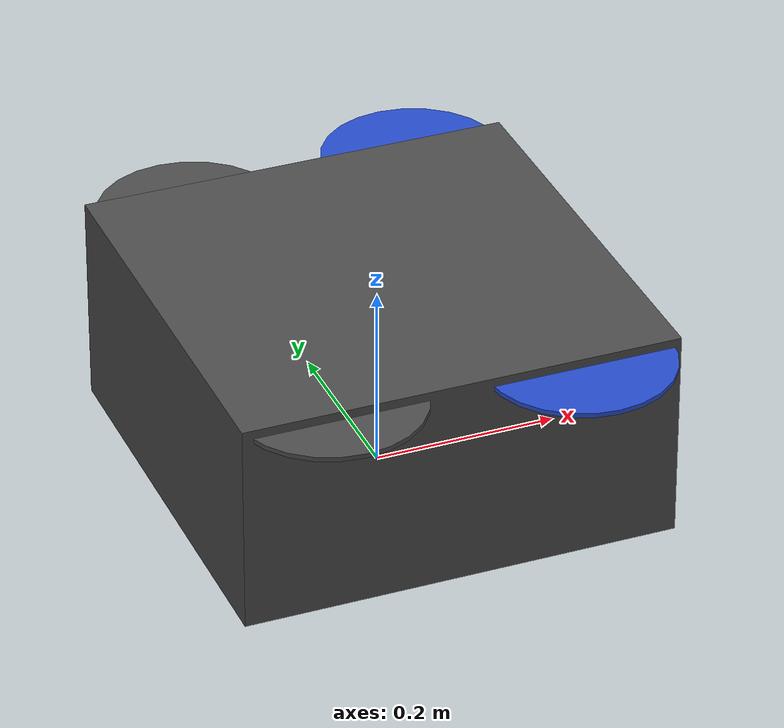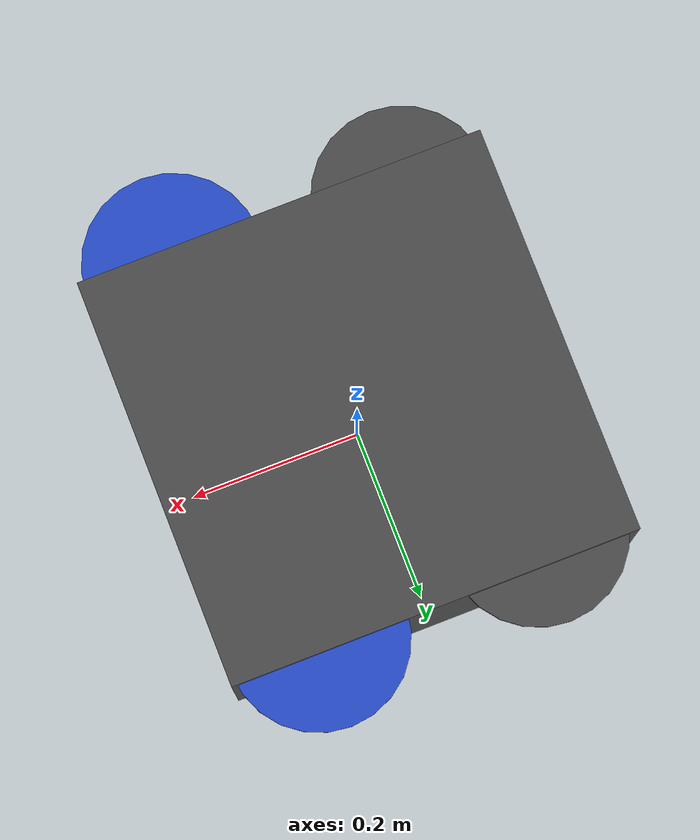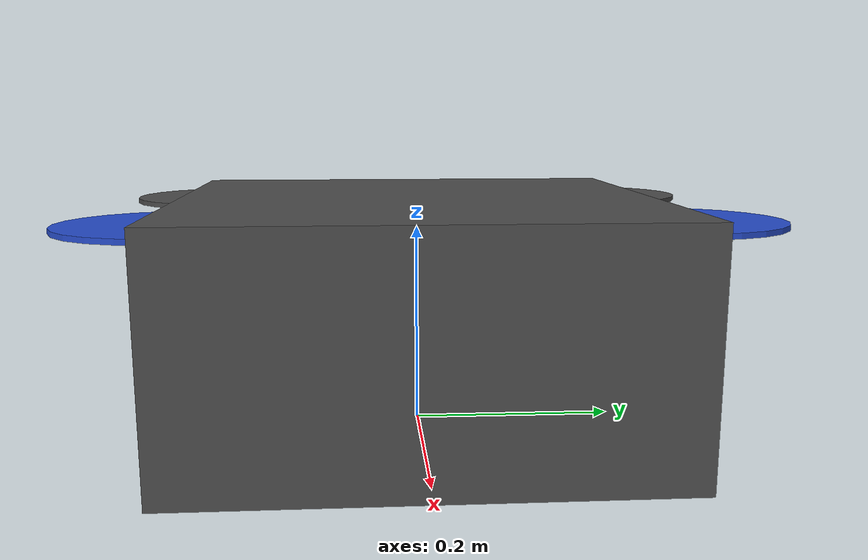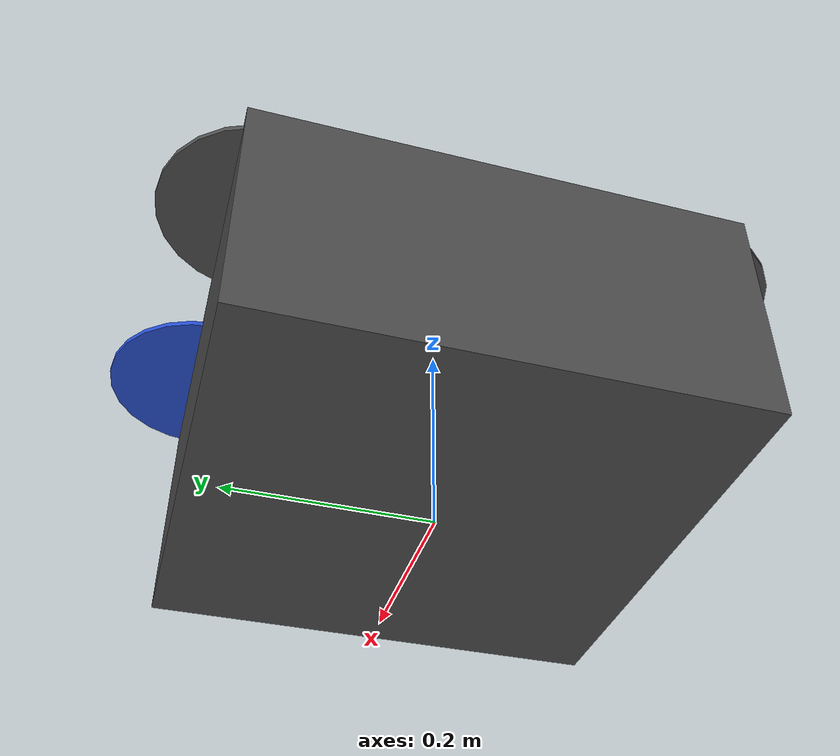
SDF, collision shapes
<?xml version="1.0"?>
<sdf version="1.9">
  <model name="iris_ardupilot_depth_cam">

    <!-- ========== BASE IRIS AIRFRAME ========== -->
    <include>
      <uri>model://iris_with_standoffs</uri>
    </include>

    <!-- ========== DEPTH CAMERA ========== -->
    <link name="depth_camera_link">
      <pose>0.15 0 0.05 0 0.2 0</pose>
      <inertial>
        <mass>0.05</mass>
        <inertia>
          <ixx>0.00001</ixx><ixy>0</ixy><ixz>0</ixz>
          <iyy>0.00001</iyy><iyz>0</iyz>
          <izz>0.00001</izz>
        </inertia>
      </inertial>
      <visual name="camera_visual">
        <geometry><box><size>0.03 0.06 0.03</size></box></geometry>
        <material>
          <ambient>0.2 0.2 0.2 1</ambient>
          <diffuse>0.3 0.3 0.3 1</diffuse>
        </material>
      </visual>
      <collision name="camera_collision">
        <geometry><box><size>0.03 0.06 0.03</size></box></geometry>
      </collision>
      <sensor name="depth_camera" type="rgbd_camera">
        <pose>0.015 0 0 0 0 0</pose>
        <camera>
          <horizontal_fov>1.047</horizontal_fov>
          <image><width>640</width><height>480</height><format>R8G8B8</format></image>
          <clip><near>0.1</near><far>20.0</far></clip>
          <depth_camera><clip><near>0.1</near><far>20.0</far></clip></depth_camera>
        </camera>
        <update_rate>15</update_rate>
        <topic>depth_camera</topic>
        <always_on>true</always_on>
        <visualize>true</visualize>
      </sensor>
    </link>
    <joint name="depth_camera_joint" type="fixed">
      <parent>iris_with_standoffs::base_link</parent>
      <child>depth_camera_link</child>
    </joint>

    <!-- ========== ARDUPILOT PLUGIN (connects Gazebo ↔ ArduPilot SITL) ========== -->
    <plugin filename="gz-sim-joint-state-publisher-system"
      name="gz::sim::systems::JointStatePublisher">
    </plugin>

    <!-- Lift-drag for rotor 0 -->
    <plugin filename="gz-sim-lift-drag-system" name="gz::sim::systems::LiftDrag">
      <a0>0.3</a0><alpha_stall>1.4</alpha_stall><cla>4.2500</cla><cda>0.10</cda><cma>0.0</cma>
      <cla_stall>-0.025</cla_stall><cda_stall>0.0</cda_stall><cma_stall>0.0</cma_stall>
      <area>0.002</area><air_density>1.2041</air_density>
      <cp>0.084 0 0</cp><forward>0 1 0</forward><upward>0 0 1</upward>
      <link_name>iris_with_standoffs::rotor_0</link_name>
    </plugin>
    <plugin filename="gz-sim-lift-drag-system" name="gz::sim::systems::LiftDrag">
      <a0>0.3</a0><alpha_stall>1.4</alpha_stall><cla>4.2500</cla><cda>0.10</cda><cma>0.0</cma>
      <cla_stall>-0.025</cla_stall><cda_stall>0.0</cda_stall><cma_stall>0.0</cma_stall>
      <area>0.002</area><air_density>1.2041</air_density>
      <cp>-0.084 0 0</cp><forward>0 -1 0</forward><upward>0 0 1</upward>
      <link_name>iris_with_standoffs::rotor_0</link_name>
    </plugin>

    <!-- Lift-drag for rotor 1 -->
    <plugin filename="gz-sim-lift-drag-system" name="gz::sim::systems::LiftDrag">
      <a0>0.3</a0><alpha_stall>1.4</alpha_stall><cla>4.2500</cla><cda>0.10</cda><cma>0.0</cma>
      <cla_stall>-0.025</cla_stall><cda_stall>0.0</cda_stall><cma_stall>0.0</cma_stall>
      <area>0.002</area><air_density>1.2041</air_density>
      <cp>0.084 0 0</cp><forward>0 1 0</forward><upward>0 0 1</upward>
      <link_name>iris_with_standoffs::rotor_1</link_name>
    </plugin>
    <plugin filename="gz-sim-lift-drag-system" name="gz::sim::systems::LiftDrag">
      <a0>0.3</a0><alpha_stall>1.4</alpha_stall><cla>4.2500</cla><cda>0.10</cda><cma>0.0</cma>
      <cla_stall>-0.025</cla_stall><cda_stall>0.0</cda_stall><cma_stall>0.0</cma_stall>
      <area>0.002</area><air_density>1.2041</air_density>
      <cp>-0.084 0 0</cp><forward>0 -1 0</forward><upward>0 0 1</upward>
      <link_name>iris_with_standoffs::rotor_1</link_name>
    </plugin>

    <!-- Lift-drag for rotor 2 -->
    <plugin filename="gz-sim-lift-drag-system" name="gz::sim::systems::LiftDrag">
      <a0>0.3</a0><alpha_stall>1.4</alpha_stall><cla>4.2500</cla><cda>0.10</cda><cma>0.0</cma>
      <cla_stall>-0.025</cla_stall><cda_stall>0.0</cda_stall><cma_stall>0.0</cma_stall>
      <area>0.002</area><air_density>1.2041</air_density>
      <cp>0.084 0 0</cp><forward>0 -1 0</forward><upward>0 0 1</upward>
      <link_name>iris_with_standoffs::rotor_2</link_name>
    </plugin>
    <plugin filename="gz-sim-lift-drag-system" name="gz::sim::systems::LiftDrag">
      <a0>0.3</a0><alpha_stall>1.4</alpha_stall><cla>4.2500</cla><cda>0.10</cda><cma>0.0</cma>
      <cla_stall>-0.025</cla_stall><cda_stall>0.0</cda_stall><cma_stall>0.0</cma_stall>
      <area>0.002</area><air_density>1.2041</air_density>
      <cp>-0.084 0 0</cp><forward>0 1 0</forward><upward>0 0 1</upward>
      <link_name>iris_with_standoffs::rotor_2</link_name>
    </plugin>

    <!-- Lift-drag for rotor 3 -->
    <plugin filename="gz-sim-lift-drag-system" name="gz::sim::systems::LiftDrag">
      <a0>0.3</a0><alpha_stall>1.4</alpha_stall><cla>4.2500</cla><cda>0.10</cda><cma>0.0</cma>
      <cla_stall>-0.025</cla_stall><cda_stall>0.0</cda_stall><cma_stall>0.0</cma_stall>
      <area>0.002</area><air_density>1.2041</air_density>
      <cp>0.084 0 0</cp><forward>0 -1 0</forward><upward>0 0 1</upward>
      <link_name>iris_with_standoffs::rotor_3</link_name>
    </plugin>
    <plugin filename="gz-sim-lift-drag-system" name="gz::sim::systems::LiftDrag">
      <a0>0.3</a0><alpha_stall>1.4</alpha_stall><cla>4.2500</cla><cda>0.10</cda><cma>0.0</cma>
      <cla_stall>-0.025</cla_stall><cda_stall>0.0</cda_stall><cma_stall>0.0</cma_stall>
      <area>0.002</area><air_density>1.2041</air_density>
      <cp>-0.084 0 0</cp><forward>0 1 0</forward><upward>0 0 1</upward>
      <link_name>iris_with_standoffs::rotor_3</link_name>
    </plugin>

    <!-- Apply joint force for rotors -->
    <plugin filename="gz-sim-apply-joint-force-system" name="gz::sim::systems::ApplyJointForce">
      <joint_name>iris_with_standoffs::rotor_0_joint</joint_name>
    </plugin>
    <plugin filename="gz-sim-apply-joint-force-system" name="gz::sim::systems::ApplyJointForce">
      <joint_name>iris_with_standoffs::rotor_1_joint</joint_name>
    </plugin>
    <plugin filename="gz-sim-apply-joint-force-system" name="gz::sim::systems::ApplyJointForce">
      <joint_name>iris_with_standoffs::rotor_2_joint</joint_name>
    </plugin>
    <plugin filename="gz-sim-apply-joint-force-system" name="gz::sim::systems::ApplyJointForce">
      <joint_name>iris_with_standoffs::rotor_3_joint</joint_name>
    </plugin>

    <!-- ========== THE KEY PLUGIN: ArduPilot ↔ Gazebo ========== -->
    <plugin name="ArduPilotPlugin" filename="ArduPilotPlugin">
      <fdm_addr>127.0.0.1</fdm_addr>
      <fdm_port_in>9002</fdm_port_in>
      <connectionTimeoutMaxCount>5</connectionTimeoutMaxCount>
      <lock_step>1</lock_step>
      <have_32_channels>0</have_32_channels>

      <modelXYZToAirplaneXForwardZDown degrees="true">0 0 0 180 0 0</modelXYZToAirplaneXForwardZDown>
      <gazeboXYZToNED degrees="true">0 0 0 180 0 90</gazeboXYZToNED>

      <imuName>iris_with_standoffs::imu_link::imu_sensor</imuName>

      <control channel="0">
        <jointName>iris_with_standoffs::rotor_0_joint</jointName>
        <useForce>1</useForce>
        <multiplier>838</multiplier>
        <offset>0</offset>
        <servo_min>1100</servo_min>
        <servo_max>1900</servo_max>
        <type>VELOCITY</type>
        <p_gain>0.20</p_gain>
        <i_gain>0</i_gain>
        <d_gain>0</d_gain>
        <i_max>0</i_max>
        <i_min>0</i_min>
        <cmd_max>2.5</cmd_max>
        <cmd_min>-2.5</cmd_min>
        <controlVelocitySlowdownSim>1</controlVelocitySlowdownSim>
      </control>

      <control channel="1">
        <jointName>iris_with_standoffs::rotor_1_joint</jointName>
        <useForce>1</useForce>
        <multiplier>838</multiplier>
        <offset>0</offset>
        <servo_min>1100</servo_min>
        <servo_max>1900</servo_max>
        <type>VELOCITY</type>
        <p_gain>0.20</p_gain>
        <i_gain>0</i_gain>
        <d_gain>0</d_gain>
        <i_max>0</i_max>
        <i_min>0</i_min>
        <cmd_max>2.5</cmd_max>
        <cmd_min>-2.5</cmd_min>
        <controlVelocitySlowdownSim>1</controlVelocitySlowdownSim>
      </control>

      <control channel="2">
        <jointName>iris_with_standoffs::rotor_2_joint</jointName>
        <useForce>1</useForce>
        <multiplier>-838</multiplier>
        <offset>0</offset>
        <servo_min>1100</servo_min>
        <servo_max>1900</servo_max>
        <type>VELOCITY</type>
        <p_gain>0.20</p_gain>
        <i_gain>0</i_gain>
        <d_gain>0</d_gain>
        <i_max>0</i_max>
        <i_min>0</i_min>
        <cmd_max>2.5</cmd_max>
        <cmd_min>-2.5</cmd_min>
        <controlVelocitySlowdownSim>1</controlVelocitySlowdownSim>
      </control>

      <control channel="3">
        <jointName>iris_with_standoffs::rotor_3_joint</jointName>
        <useForce>1</useForce>
        <multiplier>-838</multiplier>
        <offset>0</offset>
        <servo_min>1100</servo_min>
        <servo_max>1900</servo_max>
        <type>VELOCITY</type>
        <p_gain>0.20</p_gain>
        <i_gain>0</i_gain>
        <d_gain>0</d_gain>
        <i_max>0</i_max>
        <i_min>0</i_min>
        <cmd_max>2.5</cmd_max>
        <cmd_min>-2.5</cmd_min>
        <controlVelocitySlowdownSim>1</controlVelocitySlowdownSim>
      </control>
    </plugin>

  </model>
</sdf>

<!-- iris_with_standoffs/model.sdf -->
<sdf version='1.6'>
  <model name='iris'>
    <pose>0 0 0.194923 0 0 0</pose>
    <link name='base_link'>
      <velocity_decay>
        <linear>0.0</linear>
        <angular>0.0</angular>
      </velocity_decay>
      <inertial>
        <pose>0 0 0 0 0 0</pose>
        <mass>1.5</mass>
        <inertia>
          <ixx>0.008</ixx>
          <ixy>0</ixy>
          <ixz>0</ixz>
          <iyy>0.015</iyy>
          <iyz>0</iyz>
          <izz>0.017</izz>
        </inertia>
      </inertial>
      <collision name='base_link_collision'>
        <pose>0 0 -0.08 0 0 0</pose>
        <geometry>
          <box>
            <size>0.47 0.47 0.23</size>
          </box>
        </geometry>
        <surface>
          <contact>
            <ode>
              <max_vel>100.0</max_vel>
              <min_depth>0.001</min_depth>
            </ode>
          </contact>
          <friction>
            <ode>
              <mu>1.0</mu>
              <mu2>1.0</mu2>
            </ode>
          </friction>
        </surface>
      </collision>
      <visual name='base_link_visual'>
        <geometry>
          <mesh>
            <uri>model://../model_source/models/iris_with_standoffs/meshes/iris.dae</uri>
          </mesh>
        </geometry>
        <material>
          <script>
            <name>Gazebo/DarkGrey</name>
          </script>
        </material>
      </visual>

      <visual name='front_left_leg_visual'>
        <pose>0.123 0.22 -0.11 0 0 0</pose>
        <geometry>
          <cylinder>
            <radius>0.005</radius>
            <length>0.17</length>
          </cylinder>
        </geometry>
        <material>
          <script>
            <name>Gazebo/FlatBlack</name>
            <uri>file://media/materials/scripts/gazebo.material</uri>
          </script>
        </material>
      </visual>
      <visual name='front_right_leg_visual'>
        <pose>0.123 -0.22 -0.11 0 0 0</pose>
        <geometry>
          <cylinder>
            <radius>0.005</radius>
            <length>0.17</length>
          </cylinder>
        </geometry>
        <material>
          <script>
            <name>Gazebo/FlatBlack</name>
            <uri>file://media/materials/scripts/gazebo.material</uri>
          </script>
        </material>
      </visual>
      <visual name='rear_left_leg_visual'>
        <pose>-0.140 0.21 -0.11 0 0 0</pose>
        <geometry>
          <cylinder>
            <radius>0.005</radius>
            <length>0.17</length>
          </cylinder>
        </geometry>
        <material>
          <script>
            <name>Gazebo/FlatBlack</name>
            <uri>file://media/materials/scripts/gazebo.material</uri>
          </script>
        </material>
      </visual>
      <visual name='rear_right_leg_visual'>
        <pose>-0.140 -0.21 -0.11 0 0 0</pose>
        <geometry>
          <cylinder>
            <radius>0.005</radius>
            <length>0.17</length>
          </cylinder>
        </geometry>
        <material>
          <script>
            <name>Gazebo/FlatBlack</name>
            <uri>file://media/materials/scripts/gazebo.material</uri>
          </script>
        </material>
      </visual>
    </link>
    <link name='iris/ground_truth/odometry_sensorgt_link'>
      <pose>0 0 0 0 -0 0</pose>
      <inertial>
        <pose>0 0 0 0 -0 0</pose>
        <mass>0.15</mass>
        <inertia>
          <ixx>0.0001</ixx>
          <ixy>0</ixy>
          <ixz>0</ixz>
          <iyy>0.0002</iyy>
          <iyz>0</iyz>
          <izz>0.0002</izz>
        </inertia>
      </inertial>
    </link>
    <joint name='iris/ground_truth/odometry_sensorgt_joint' type='revolute'>
      <child>iris/ground_truth/odometry_sensorgt_link</child>
      <parent>base_link</parent>
      <axis>
        <xyz>0 0 1</xyz>
        <limit>
          <lower>0</lower>
          <upper>0</upper>
          <effort>0</effort>
          <velocity>0</velocity>
        </limit>
        <dynamics>
          <damping>1.0</damping>
        </dynamics>
        <use_parent_model_frame>1</use_parent_model_frame>
      </axis>
      <physics>
        <ode>
          <implicit_spring_damper>1</implicit_spring_damper>
        </ode>
      </physics>
    </joint>
    <link name='iris/imu_link'>
      <inertial>
        <pose>0 0 0 0 0 0</pose>
        <mass>0.15</mass>
        <inertia>
          <ixx>0.00001</ixx>
          <ixy>0</ixy>
          <ixz>0</ixz>
          <iyy>0.00002</iyy>
          <iyz>0</iyz>
          <izz>0.00002</izz>
        </inertia>
      </inertial>
      <sensor name="imu_sensor" type="imu">
        <pose>0 0 0 3.141593 0 0</pose>
        <always_on>1</always_on>
        <update_rate>1000.0</update_rate>
      </sensor>
    </link>
    <joint name='iris/imu_joint' type='revolute'>
      <child>iris/imu_link</child>
      <parent>base_link</parent>
      <axis>
        <xyz>0 0 1</xyz>
        <limit>
          <lower>0</lower>
          <upper>0</upper>
          <effort>0</effort>
          <velocity>0</velocity>
        </limit>
        <dynamics>
          <damping>1.0</damping>
        </dynamics>
        <use_parent_model_frame>1</use_parent_model_frame>
      </axis>
      <physics>
        <ode>
          <implicit_spring_damper>1</implicit_spring_damper>
        </ode>
      </physics>
    </joint>
    <link name='rotor_0'>
      <pose>0.13 -0.22 0.023 0 -0 0</pose>
      <inertial>
        <pose>0 0 0 0 -0 0</pose>
        <mass>0.025</mass>
        <inertia>
          <ixx>9.75e-06</ixx>
          <ixy>0</ixy>
          <ixz>0</ixz>
          <iyy>0.000166704</iyy>
          <iyz>0</iyz>
          <izz>0.000167604</izz>
        </inertia>
      </inertial>
      <collision name='rotor_0_collision'>
        <pose>0 0 0 0 -0 0</pose>
        <geometry>
          <cylinder>
            <length>0.005</length>
            <radius>0.1</radius>
          </cylinder>
        </geometry>
        <surface>
          <contact>
            <ode/>
          </contact>
          <friction>
            <ode/>
          </friction>
        </surface>
      </collision>
      <visual name='rotor_0_visual'>
        <pose>0 0 0 0 -0 0</pose>
        <geometry>
          <mesh>
            <scale>1 1 1</scale>
            <uri>model://../model_source/models/iris_with_standoffs/meshes/iris_prop_ccw.dae</uri>
          </mesh>
        </geometry>
        <material>
          <script>
            <name>Gazebo/Blue</name>
            <uri>__default__</uri>
          </script>
        </material>
      </visual>
      <gravity>1</gravity>
      <velocity_decay/>
      <self_collide>0</self_collide>
    </link>
    <joint name='rotor_0_joint' type='revolute'>
      <child>rotor_0</child>
      <parent>base_link</parent>
      <axis>
        <xyz>0 0 1</xyz>
        <limit>
          <lower>-1e+16</lower>
          <upper>1e+16</upper>
        </limit>
        <dynamics>
          <damping>0.004</damping>
        </dynamics>
        <use_parent_model_frame>1</use_parent_model_frame>
      </axis>
      <physics>
        <ode>
          <implicit_spring_damper>1</implicit_spring_damper>
        </ode>
      </physics>
    </joint>
    <link name='rotor_1'>
      <pose>-0.13 0.2 0.023 0 -0 0</pose>
      <inertial>
        <pose>0 0 0 0 -0 0</pose>
        <mass>0.025</mass>
        <inertia>
          <ixx>9.75e-06</ixx>
          <ixy>0</ixy>
          <ixz>0</ixz>
          <iyy>0.000166704</iyy>
          <iyz>0</iyz>
          <izz>0.000167604</izz>
        </inertia>
      </inertial>
      <collision name='rotor_1_collision'>
        <pose>0 0 0 0 -0 0</pose>
        <geometry>
          <cylinder>
            <length>0.005</length>
            <radius>0.1</radius>
          </cylinder>
        </geometry>
        <surface>
          <contact>
            <ode/>
          </contact>
          <friction>
            <ode/>
          </friction>
        </surface>
      </collision>
      <visual name='rotor_1_visual'>
        <pose>0 0 0 0 -0 0</pose>
        <geometry>
          <mesh>
            <scale>1 1 1</scale>
            <uri>model://../model_source/models/iris_with_standoffs/meshes/iris_prop_ccw.dae</uri>
          </mesh>
        </geometry>
        <material>
          <script>
            <name>Gazebo/DarkGrey</name>
            <uri>__default__</uri>
          </script>
        </material>
      </visual>
      <gravity>1</gravity>
      <velocity_decay/>
      <self_collide>0</self_collide>
    </link>
    <joint name='rotor_1_joint' type='revolute'>
      <child>rotor_1</child>
      <parent>base_link</parent>
      <axis>
        <xyz>0 0 1</xyz>
        <limit>
          <lower>-1e+16</lower>
          <upper>1e+16</upper>
        </limit>
        <dynamics>
          <damping>0.004</damping>
        </dynamics>
        <use_parent_model_frame>1</use_parent_model_frame>
      </axis>
      <physics>
        <ode>
          <implicit_spring_damper>1</implicit_spring_damper>
        </ode>
      </physics>
    </joint>
    <link name='rotor_2'>
      <pose>0.13 0.22 0.023 0 -0 0</pose>
      <inertial>
        <pose>0 0 0 0 -0 0</pose>
        <mass>0.025</mass>
        <inertia>
          <ixx>9.75e-06</ixx>
          <ixy>0</ixy>
          <ixz>0</ixz>
          <iyy>0.000166704</iyy>
          <iyz>0</iyz>
          <izz>0.000167604</izz>
        </inertia>
      </inertial>
      <collision name='rotor_2_collision'>
        <pose>0 0 0 0 -0 0</pose>
        <geometry>
          <cylinder>
            <length>0.005</length>
            <radius>0.1</radius>
          </cylinder>
        </geometry>
        <surface>
          <contact>
            <ode/>
          </contact>
          <friction>
            <ode/>
          </friction>
        </surface>
      </collision>
      <visual name='rotor_2_visual'>
        <pose>0 0 0 0 -0 0</pose>
        <geometry>
          <mesh>
            <scale>1 1 1</scale>
            <uri>model://../model_source/models/iris_with_standoffs/meshes/iris_prop_cw.dae</uri>
          </mesh>
        </geometry>
        <material>
          <script>
            <name>Gazebo/Blue</name>
            <uri>__default__</uri>
          </script>
        </material>
      </visual>
      <gravity>1</gravity>
      <velocity_decay/>
      <self_collide>0</self_collide>
    </link>
    <joint name='rotor_2_joint' type='revolute'>
      <child>rotor_2</child>
      <parent>base_link</parent>
      <axis>
        <xyz>0 0 1</xyz>
        <limit>
          <lower>-1e+16</lower>
          <upper>1e+16</upper>
        </limit>
        <dynamics>
          <damping>0.004</damping>
        </dynamics>
        <use_parent_model_frame>1</use_parent_model_frame>
      </axis>
      <physics>
        <ode>
          <implicit_spring_damper>1</implicit_spring_damper>
        </ode>
      </physics>
    </joint>
    <link name='rotor_3'>
      <pose>-0.13 -0.2 0.023 0 -0 0</pose>
      <inertial>
        <pose>0 0 0 0 -0 0</pose>
        <mass>0.025</mass>
        <inertia>
          <ixx>9.75e-06</ixx>
          <ixy>0</ixy>
          <ixz>0</ixz>
          <iyy>0.000166704</iyy>
          <iyz>0</iyz>
          <izz>0.000167604</izz>
        </inertia>
      </inertial>
      <collision name='rotor_3_collision'>
        <pose>0 0 0 0 -0 0</pose>
        <geometry>
          <cylinder>
            <length>0.005</length>
            <radius>0.1</radius>
          </cylinder>
        </geometry>
        <surface>
          <contact>
            <ode/>
          </contact>
          <friction>
            <ode/>
          </friction>
        </surface>
      </collision>
      <visual name='rotor_3_visual'>
        <pose>0 0 0 0 -0 0</pose>
        <geometry>
          <mesh>
            <scale>1 1 1</scale>
            <uri>model://../model_source/models/iris_with_standoffs/meshes/iris_prop_cw.dae</uri>
          </mesh>
        </geometry>
        <material>
          <script>
            <name>Gazebo/DarkGrey</name>
            <uri>__default__</uri>
          </script>
        </material>
      </visual>
      <gravity>1</gravity>
      <velocity_decay/>
      <self_collide>0</self_collide>
    </link>
    <joint name='rotor_3_joint' type='revolute'>
      <child>rotor_3</child>
      <parent>base_link</parent>
      <axis>
        <xyz>0 0 1</xyz>
        <limit>
          <lower>-1e+16</lower>
          <upper>1e+16</upper>
        </limit>
        <dynamics>
          <damping>0.004</damping>
        </dynamics>
        <use_parent_model_frame>1</use_parent_model_frame>
      </axis>
      <physics>
        <ode>
          <implicit_spring_damper>1</implicit_spring_damper>
        </ode>
      </physics>
    </joint>
    <static>0</static>
  </model>
</sdf>
